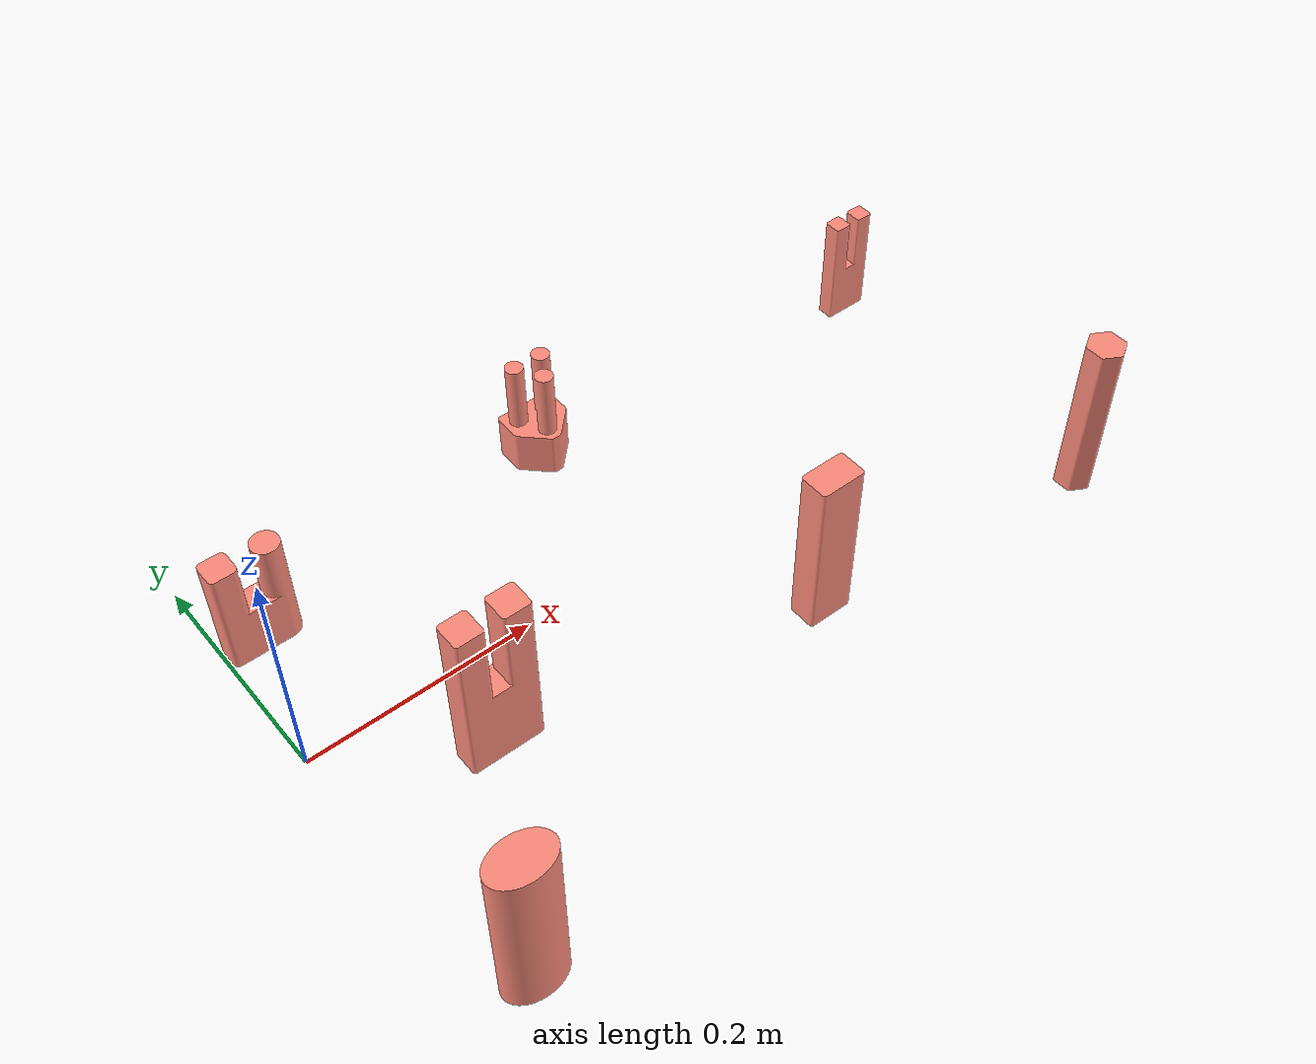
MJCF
<?xml version='1.0' encoding='utf-8'?>
<mujoco model="obj6">
  <asset>
    <mesh name="obj6" file="obj6.obj" scale="0.001 0.001 0.001" />
    <material name="mat6" rgba="1 0.54902 0.48235 1" />
  </asset>
  <worldbody>
    <body>
      <body name="object">
        <geom name="visual" mesh="obj6" type="mesh" group="1" contype="0" conaffinity="0" material="mat6" />
        <geom name="collision" mesh="obj6" type="mesh" group="0" density="50" friction="0.95 0.3 0.1" solimp="0.998 0.998 0.001" solref="0.001 1" condim="4" />
      </body>
      <site name="bottom_site" pos="0 0 -0.025" size="0.005" rgba="0 0 0 0" />
      <site name="top_site" pos="0 0 0.025" size="0.005" rgba="0 0 0 0" />
      <site name="horizontal_radius_site" pos="0.03 0.03 0" size="0.005" rgba="0 0 0 0" />
    </body>
  </worldbody>
</mujoco>
